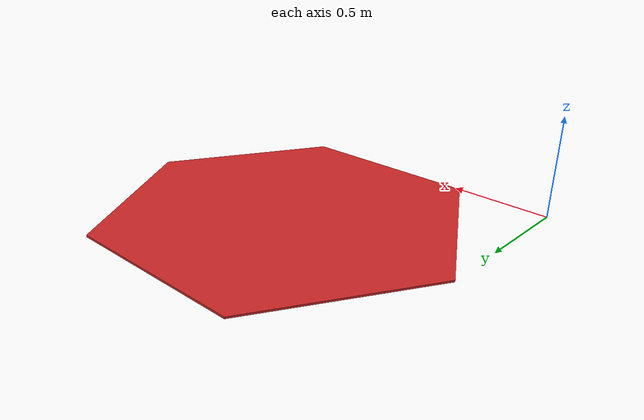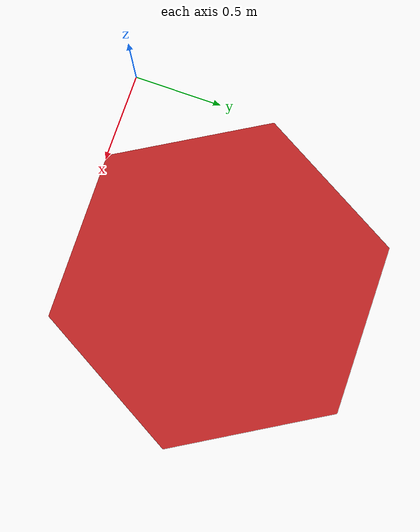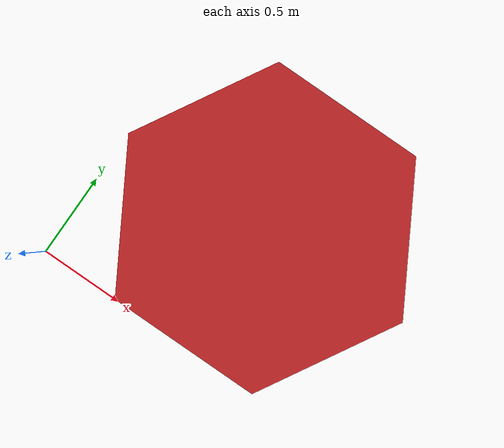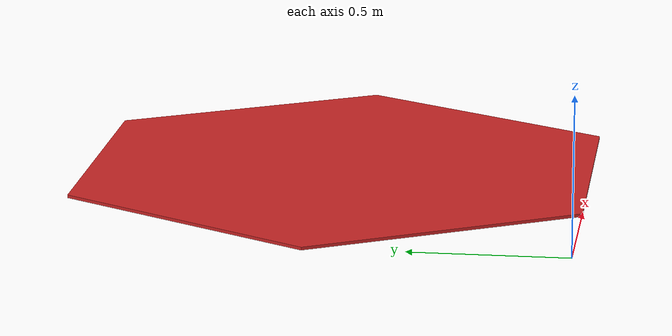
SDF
<?xml version="1.0" ?>
<sdf version="1.5">
  <model name="hexagon_189">
    <static>true</static>
    <link name="link">
      <visual name="visual_top">
        <pose> 0 0 -0.008 0 0 0 </pose>
        <geometry>
          <mesh>
            <scale> 0.01 0.01 0.0000625</scale>
            <uri>model://hexagon_189/meshes/hexagon_189.STL</uri>
          </mesh>
        </geometry>
        <material>
          <lighting>1</lighting>
          <script>
            <uri>file://media/materials/scripts/gazebo.material</uri>
            <name>Gazebo/Red</name>
          </script>

          <shader type='vertex'>
            <normal_map>__default__</normal_map>
          </shader>
        </material>
      </visual>
    </link>

    <link name="point0">
      <pose relative_to="link">
        0.47728 0 0 0 0 0
      </pose>
    </link>

    <link name="point1">
      <pose relative_to="link">
        1.4223 0.005534 0 0 0 0
      </pose>
    </link>

    <link name="point2">
      <pose relative_to="link">
        1.89 0.82668 0 0 0 0
      </pose>
    </link>

    <link name="point3">
      <pose relative_to="link">
        1.4127 1.6423 0 0 0 0
      </pose>
    </link>

    <link name="point4">
      <pose relative_to="link">
        0.4677 1.6368 0 0 0 0
      </pose>
    </link>

    <link name="point5">
      <pose relative_to="link">
        0 0.81561 0 0 0 0
      </pose>
    </link>

  </model>
</sdf>
